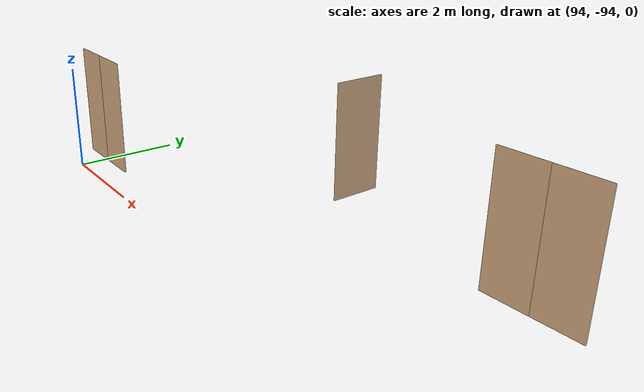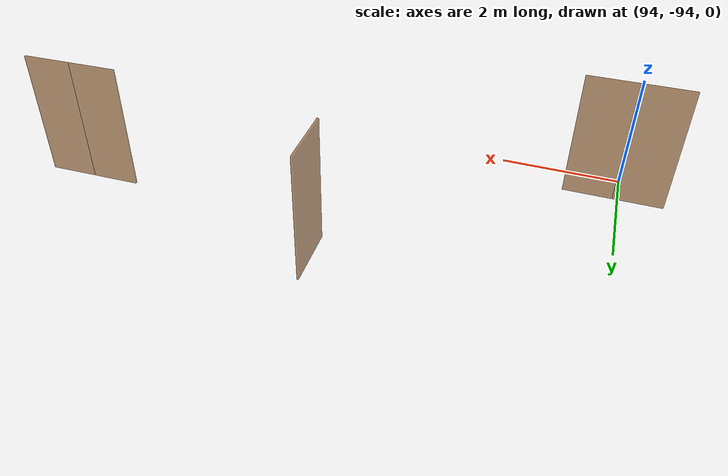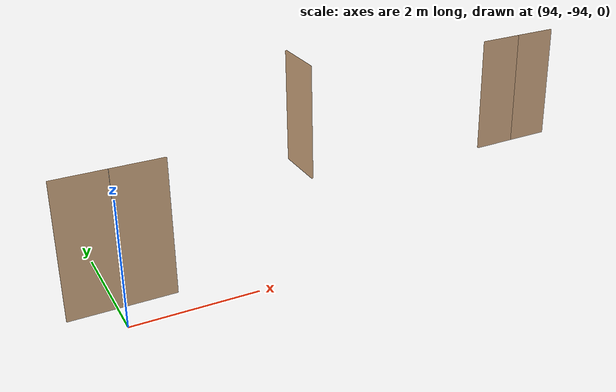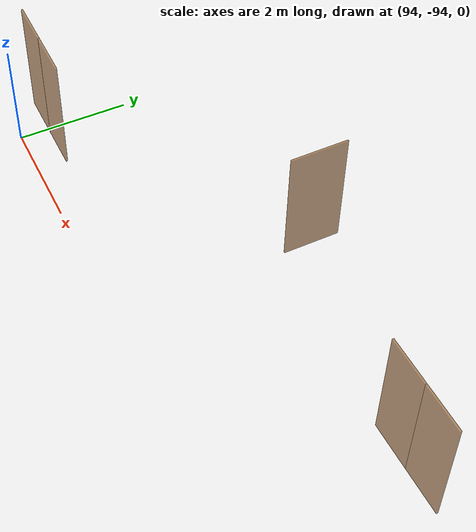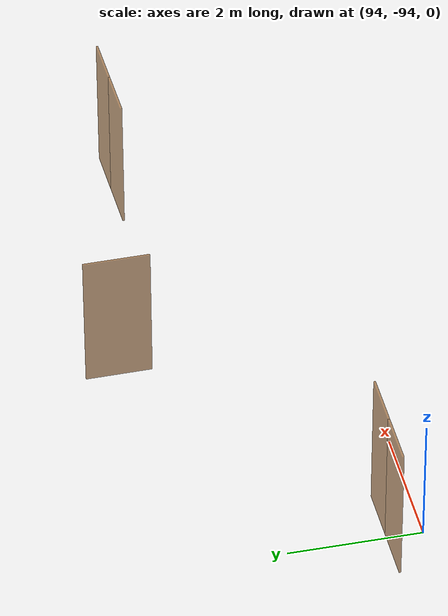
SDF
<sdf version="1.7">
 <world name="sim_world">
  <model name="puerta7">
   <pose>102.73831512249711 -91.2112765536711 0.0 0 0 0.02877142512474166</pose>
   <link name="right">
    <pose>0.41207062694379454 0 1.11 0 0 0</pose>
    <visual name="right_visual">
     <geometry><box><size>0.8141412538875891 0.03 2.2</size></box></geometry>
     <material>
      <ambient>0.5 0.25 0 0.6</ambient>
      <diffuse>0.5 0.25 0 0.6</diffuse>
      <pbr><metal><metalness>0.0</metalness></metal></pbr>
     </material>
    </visual>
    <collision name="right_collision">
     <geometry><box><size>0.8141412538875891 0.03 2.2</size></box></geometry>
     <surface><contact><collide_bitmask>0x02</collide_bitmask></contact></surface>
    </collision>
    <inertial>
     <mass>50.0</mass>
     <inertia><ixx>20.17041666666667</ixx><iyy>22.92844158867357</iyy><izz>2.765524922006899</izz></inertia>
    </inertial>
   </link>
   <joint name="right_joint" type="revolute">
    <parent>world</parent>
    <child>right</child>
    <axis><xyz>0 0 -1</xyz><limit><lower>0</lower><upper>1.57</upper></limit></axis>
    <pose>0.41207062694379454 0 0 0 0 0</pose>
   </joint>
   <link name="left">
    <pose>-0.41207062694379454 0 1.11 0 0 0</pose>
    <visual name="left_visual">
     <geometry><box><size>0.8141412538875891 0.03 2.2</size></box></geometry>
     <material>
      <ambient>0.5 0.25 0 0.6</ambient>
      <diffuse>0.5 0.25 0 0.6</diffuse>
      <pbr><metal><metalness>0.0</metalness></metal></pbr>
     </material>
    </visual>
    <collision name="left_collision">
     <geometry><box><size>0.8141412538875891 0.03 2.2</size></box></geometry>
     <surface><contact><collide_bitmask>0x02</collide_bitmask></contact></surface>
    </collision>
    <inertial>
     <mass>50.0</mass>
     <inertia><ixx>20.17041666666667</ixx><iyy>22.92844158867357</iyy><izz>2.765524922006899</izz></inertia>
    </inertial>
   </link>
   <joint name="left_joint" type="revolute">
    <parent>world</parent>
    <child>left</child>
    <axis><xyz>0 0 -1</xyz><limit><lower>-1.57</lower><upper>0</upper></limit></axis>
    <pose>-0.41207062694379454 0 0 0 0 0</pose>
   </joint>
   <plugin name="register_component" filename="libregister_component.so">
    <component name="Door">
     <v_max_door>0.5</v_max_door>
     <a_max_door>0.3</a_max_door>
     <a_nom_door>0.15</a_nom_door>
     <dx_min_door>0.01</dx_min_door>
     <f_max_door>500.0</f_max_door>
     <ros_interface>true</ros_interface>
     <door name="puerta7" type="DoubleSwingDoor" left_joint_name="left_joint" right_joint_name="right_joint"/>
    </component>
   </plugin>
  </model>
  <model name="puerta6">
   <pose>98.37627640641367 -90.44082565140374 0.0 0 0 -1.5591991745274412</pose>
   <link name="right">
    <pose>0 0 1.11 0 0 0</pose>
    <visual name="right_visual">
     <geometry><box><size>1.0094686706926435 0.03 2.2</size></box></geometry>
     <material>
      <ambient>0.5 0.25 0 0.6</ambient>
      <diffuse>0.5 0.25 0 0.6</diffuse>
      <pbr><metal><metalness>0.0</metalness></metal></pbr>
     </material>
    </visual>
    <collision name="right_collision">
     <geometry><box><size>1.0094686706926435 0.03 2.2</size></box></geometry>
     <surface><contact><collide_bitmask>0x02</collide_bitmask></contact></surface>
    </collision>
    <inertial>
     <mass>50.0</mass>
     <inertia><ixx>20.17041666666667</ixx><iyy>24.412612487958224</iyy><izz>4.249695821291552</izz></inertia>
    </inertial>
   </link>
   <joint name="right_joint" type="revolute">
    <parent>world</parent>
    <child>right</child>
    <axis><xyz>0 0 -1</xyz><limit><lower>0</lower><upper>1.57</upper></limit></axis>
    <pose>0.5097343353463217 0 0 0 0 0</pose>
   </joint>
   <plugin name="register_component" filename="libregister_component.so">
    <component name="Door">
     <v_max_door>0.5</v_max_door>
     <a_max_door>0.3</a_max_door>
     <a_nom_door>0.15</a_nom_door>
     <dx_min_door>0.01</dx_min_door>
     <f_max_door>500.0</f_max_door>
     <ros_interface>true</ros_interface>
     <door name="puerta6" type="SwingDoor" left_joint_name="empty_joint" right_joint_name="right_joint"/>
    </component>
   </plugin>
  </model>
  <model name="puerta5">
   <pose>94.08645694402952 -93.46564063295449 0.0 0 0 0.0</pose>
   <link name="right">
    <pose>0.4135725074575376 0 1.11 0 0 0</pose>
    <visual name="right_visual">
     <geometry><box><size>0.8171450149150752 0.03 2.2</size></box></geometry>
     <material>
      <ambient>0.5 0.25 0 0.6</ambient>
      <diffuse>0.5 0.25 0 0.6</diffuse>
      <pbr><metal><metalness>0.0</metalness></metal></pbr>
     </material>
    </visual>
    <collision name="right_collision">
     <geometry><box><size>0.8171450149150752 0.03 2.2</size></box></geometry>
     <surface><contact><collide_bitmask>0x02</collide_bitmask></contact></surface>
    </collision>
    <inertial>
     <mass>50.0</mass>
     <inertia><ixx>20.17041666666667</ixx><iyy>22.948858230835665</iyy><izz>2.785941564168994</izz></inertia>
    </inertial>
   </link>
   <joint name="right_joint" type="revolute">
    <parent>world</parent>
    <child>right</child>
    <axis><xyz>0 0 1</xyz><limit><lower>0</lower><upper>1.57</upper></limit></axis>
    <pose>0.4135725074575376 0 0 0 0 0</pose>
   </joint>
   <link name="left">
    <pose>-0.4135725074575376 0 1.11 0 0 0</pose>
    <visual name="left_visual">
     <geometry><box><size>0.8171450149150752 0.03 2.2</size></box></geometry>
     <material>
      <ambient>0.5 0.25 0 0.6</ambient>
      <diffuse>0.5 0.25 0 0.6</diffuse>
      <pbr><metal><metalness>0.0</metalness></metal></pbr>
     </material>
    </visual>
    <collision name="left_collision">
     <geometry><box><size>0.8171450149150752 0.03 2.2</size></box></geometry>
     <surface><contact><collide_bitmask>0x02</collide_bitmask></contact></surface>
    </collision>
    <inertial>
     <mass>50.0</mass>
     <inertia><ixx>20.17041666666667</ixx><iyy>22.948858230835665</iyy><izz>2.785941564168994</izz></inertia>
    </inertial>
   </link>
   <joint name="left_joint" type="revolute">
    <parent>world</parent>
    <child>left</child>
    <axis><xyz>0 0 1</xyz><limit><lower>-1.57</lower><upper>0</upper></limit></axis>
    <pose>-0.4135725074575376 0 0 0 0 0</pose>
   </joint>
   <plugin name="register_component" filename="libregister_component.so">
    <component name="Door">
     <v_max_door>0.5</v_max_door>
     <a_max_door>0.3</a_max_door>
     <a_nom_door>0.15</a_nom_door>
     <dx_min_door>0.01</dx_min_door>
     <f_max_door>500.0</f_max_door>
     <ros_interface>true</ros_interface>
     <door name="puerta5" type="DoubleSwingDoor" left_joint_name="left_joint" right_joint_name="right_joint"/>
    </component>
   </plugin>
  </model>
 </world>
</sdf>
